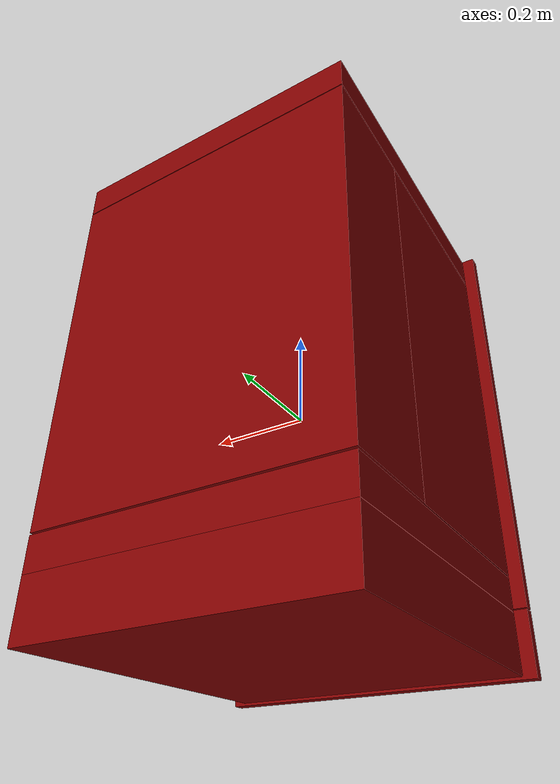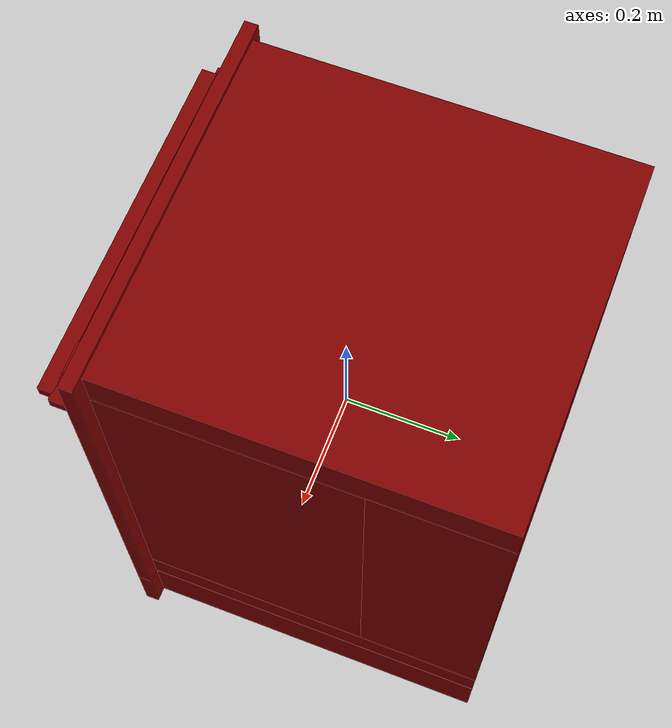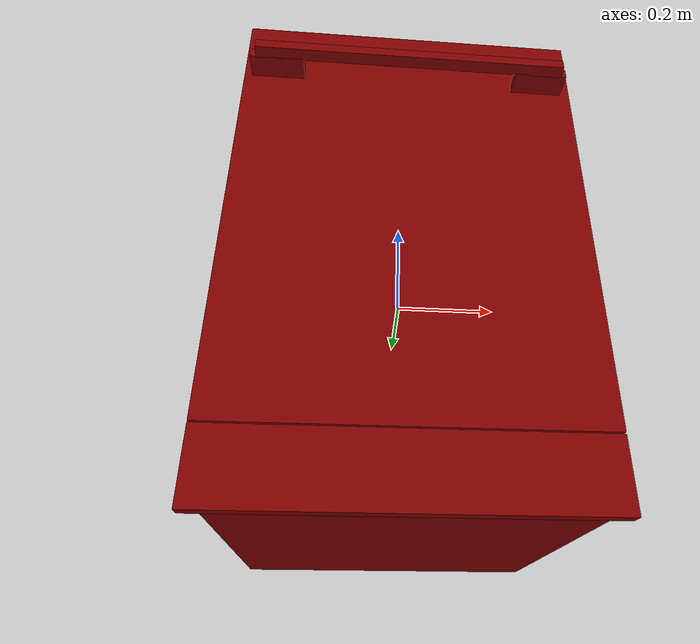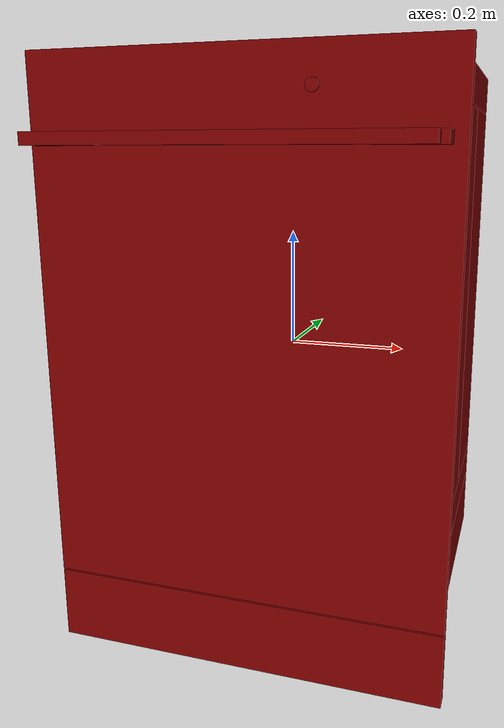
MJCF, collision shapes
<?xml version='1.0' encoding='UTF-8'?>
<mujoco model="model">
  <option timestep="0.002" gravity="0.0 0.0 -9.81"/>
  <compiler angle="radian"/>
  <asset>
    <mesh file="visuals/button_power.obj" name="button_power_vis"/>
    <mesh file="visuals/Body001.obj" name="Body001_vis"/>
    <mesh file="visuals/door.obj" name="door_vis"/>
    <mesh file="visuals/rack0.obj" name="rack0_vis"/>
    <mesh file="visuals/rack1.obj" name="rack1_vis"/>
    <texture file="visuals/T_BC001.png" name="Body001_material" type="2d"/>
    <material name="Body001_material" rgba="1 1 1 1.0" texture="Body001_material" shininess="0.1" specular="6"/>
    <texture file="visuals/T_BC001.png" name="door_material" type="2d"/>
    <material name="door_material" rgba="1 1 1 1.0" texture="door_material" shininess="0.1" specular="6"/>
    <texture file="visuals/T_BC001.png" name="button_power_material" type="2d"/>
    <material name="button_power_material" rgba="1 1 1 1.0" texture="button_power_material" shininess="0.1" specular="6"/>
    <texture file="visuals/T_BC001.png" name="rack0_material" type="2d"/>
    <material name="rack0_material" rgba="1 1 1 1.0" texture="rack0_material" shininess="0.1" specular="6"/>
    <texture file="visuals/T_BC001.png" name="rack1_material" type="2d"/>
    <material name="rack1_material" rgba="1 1 1 1.0" texture="rack1_material" shininess="0.1" specular="6"/>
  </asset>
  <default>
    <default class="visual">
      <geom conaffinity="0" contype="0" group="1" type="mesh"/>
    </default>
    <default class="collision">
      <geom group="0" rgba="0.5 0 0 0.5"/>
    </default>
    <default class="spawn">
      <geom group="0" rgba="1 1 1 0.5" contype="0" conaffinity="0"/>
      <site group="0" rgba="1 1 1 0.5"/>
    </default>
    <default class="region">
      <geom group="1" conaffinity="0" contype="0" rgba="0 1 0 0"/>
    </default>
  </default>
  <worldbody>
    <body>
      <body name="object">
        <geom mesh="Body001_vis" type="mesh" solimp="0.998 0.998 0.001" solref="0.001 1" friction="0.95 0.3 0.1" class="visual" material="Body001_material"/>
        <geom class="collision" type="box" pos="-0.00000002 -0.27696897 -0.42335901" size="0.3244858980178833 0.012244201265275478 0.061163902282714844" quat="1.0 0.0 0.0 0.0"/>
        <geom class="collision" type="box" pos="0.00038822 0.04619240 -0.42070463" size="0.2991548180580139 0.3115966320037842 0.05850958824157715" quat="1.0 0.0 0.0 0.0"/>
        <geom class="collision" type="box" pos="0.00038822 0.04619240 -0.33293474" size="0.29915493726730347 0.3115968406200409 0.03304149955511093" quat="1.0 0.0 0.0 0.0"/>
        <geom class="collision" type="box" pos="0.00038822 0.24968736 0.05879498" size="0.29915502667427063 0.10810777544975281 0.3550553023815155" quat="1.0 0.0 0.0 0.0"/>
        <geom class="collision" type="box" pos="0.00038822 0.04619240 0.44873157" size="0.29915517568588257 0.3115972578525543 0.032823991030454636" quat="1.0 0.0 0.0 0.0"/>
        <geom class="collision" type="box" pos="0.27927663 -0.06196933 0.05755318" size="0.02027086168527603 0.20343931019306183 0.35505545139312744" quat="1.0 0.0 0.0 0.0"/>
        <geom class="collision" type="box" pos="-0.27810726 -0.06196933 0.05755318" size="0.020895369350910187 0.20343941450119019 0.3550555109977722" quat="1.0 0.0 0.0 0.0"/>
        <geom class="collision" type="box" pos="0.24990419 -0.03828324 -0.14343232" size="0.011768651194870472 0.1806776374578476 0.002298763720318675" quat="1.0 0.0 0.0 0.0"/>
        <geom class="collision" type="box" pos="0.24990419 -0.03828324 0.07840847" size="0.011768658645451069 0.18067774176597595 0.002298763021826744" quat="1.0 0.0 0.0 0.0"/>
        <geom class="collision" type="box" pos="-0.24425244 -0.03828324 0.07840847" size="0.015683652833104134 0.1806778460741043 0.0022987646516412497" quat="1.0 0.0 0.0 0.0"/>
        <geom class="collision" type="box" pos="-0.24425244 -0.03828324 -0.14343232" size="0.01568366028368473 0.18067795038223267 0.002298768376931548" quat="1.0 0.0 0.0 0.0"/>
        <body name="door">
          <joint axis="1.0 0.0 0.0" pos="-2e-08 -0.28933343404995443 -0.3595657451798248" limited="true" name="door_joint" range="0.0 0.6235987755982988" type="hinge" damping="1" frictionloss="10" armature="1" stiffness="2"/>
          <geom mesh="door_vis" type="mesh" solimp="0.998 0.998 0.001" solref="0.001 1" friction="0.95 0.3 0.1" class="visual" material="door_material"/>
          <geom class="collision" type="box" pos="-0.00000002 -0.27800624 0.06247582" size="0.3244870901107788 0.011327194049954414 0.42204156517982483" quat="1.0 0.0 0.0 0.0" name="door_main"/>
          <geom class="collision" type="box" pos="-0.25857393 -0.31318618 0.35702610" size="0.05091876536607742 0.022817475721240044 0.009476338513195515" quat="1.0 0.0 0.0 0.0"/>
          <geom class="collision" type="box" pos="0.25483140 -0.31318618 0.35702610" size="0.050294287502765656 0.022817488759756088 0.009476345032453537" quat="1.0 0.0 0.0 0.0"/>
          <geom class="collision" type="box" pos="-0.00168355 -0.34621603 0.35702610" size="0.295711487531662 0.012319796718657017 0.00947635155171156" quat="1.0 0.0 0.0 0.0" name="door_handle_main"/>
          <body name="button_power">
            <joint axis="0.0 1.0 0.0" pos="0.11635070 -0.29049234 0.42535225" limited="true" name="button_power_joint" range="0.0 0.002" type="slide" damping="1" frictionloss="1" armature=".01" stiffness="4" springref="-1"/>
            <geom mesh="button_power_vis" type="mesh" solimp="0.998 0.998 0.001" solref="0.001 1" friction="0.95 0.3 0.1" class="visual" material="button_power_material"/>
            <geom class="collision" type="cylinder" pos="0.11636769 -0.29136355 0.42533377" size="0.009846530854701996 0.0015546578215435147" quat="0.7071067094802856 0.7071068286895752 0.0 0.0"/>
          </body>
        </body>
        <body name="rack0">
          <geom class="region" name="reg_rack0" type="box" pos="0.007693975000000006 -0.042310509999999996 -0.015250935" size="0.223213275 0.15854236 0.10228237500000001"/>
          <joint axis="0.0 -1.0 0.0" pos="0.00152424 -0.04322837 -0.08390982" limited="true" name="rack0_joint" range="0.0 0.2" type="slide" damping="1" frictionloss="1" armature=".01" stiffness="0.05"/>
          <geom mesh="rack0_vis" type="mesh" solimp="0.998 0.998 0.001" solref="0.001 1" friction="0.95 0.3 0.1" class="visual" material="rack0_material"/>
          <geom class="collision" type="box" pos="-0.03531636 -0.04029504 -0.09657510" size="0.0019118215423077345 0.13336151838302612 0.0261716078966856" quat="1.0 0.0 0.0 0.0"/>
          <geom class="collision" type="box" pos="0.03205111 -0.04029504 -0.09657510" size="0.0019118215423077345 0.13336151838302612 0.0261716078966856" quat="1.0 0.0 0.0 0.0"/>
          <geom class="collision" type="box" pos="0.10122308 -0.04029504 -0.09657510" size="0.0019118215423077345 0.13336151838302612 0.0261716078966856" quat="1.0 0.0 0.0 0.0"/>
          <geom class="collision" type="box" pos="0.16735027 -0.04029504 -0.09657510" size="0.0019118215423077345 0.13336151838302612 0.0261716078966856" quat="1.0 0.0 0.0 0.0"/>
          <geom class="collision" type="box" pos="0.00182250 0.12420084 -0.07674162" size="0.23673833906650543 0.003599451156333089 0.04600508511066437" quat="1.0 0.0 0.0 0.0"/>
          <geom class="collision" type="box" pos="0.00182250 -0.20953585 -0.07674162" size="0.23673833906650543 0.003599451156333089 0.04600508511066437" quat="1.0 0.0 0.0 0.0"/>
          <geom class="collision" type="box" pos="-0.24072131 -0.04413319 -0.07674162" size="0.0057272110134363174 0.16507881879806519 0.04600508511066437" quat="1.0 0.0 0.0 0.0"/>
          <geom class="collision" type="box" pos="0.24326123 -0.04413319 -0.07674162" size="0.0057272110134363174 0.16507881879806519 0.04600508511066437" quat="1.0 0.0 0.0 0.0"/>
          <geom class="collision" type="box" pos="-0.16390234 -0.04029504 -0.09657510" size="0.0019118215423077345 0.13336151838302612 0.0261716078966856" quat="1.0 0.0 0.0 0.0"/>
          <geom class="collision" type="box" pos="-0.10004316 -0.04029504 -0.09657510" size="0.0019118215423077345 0.13336151838302612 0.0261716078966856" quat="1.0 0.0 0.0 0.0"/>
          <geom class="collision" type="box" pos="0.00153467 -0.04413319 -0.12555444" size="0.24041961133480072 0.16507881879806519 0.0023818393237888813" quat="1.0 0.0 0.0 0.0"/>
        </body>
        <body name="rack1">
          <geom class="region" name="reg_rack1" type="box" pos="0.007693975000000006 -0.042310509999999996 0.251831845" size="0.223213275 0.15854236 0.150193005"/>
          <joint axis="0.0 -1.0 0.0" pos="0.00152424 -0.04322835 0.13654485" limited="true" name="rack1_joint" range="0.0 0.3" type="slide" damping="1" frictionloss="1" armature=".01" stiffness="0.05"/>
          <geom mesh="rack1_vis" type="mesh" solimp="0.998 0.998 0.001" solref="0.001 1" friction="0.95 0.3 0.1" class="visual" material="rack1_material"/>
          <geom class="collision" type="box" pos="0.00153467 -0.04413319 0.09445150" size="0.24041961133480072 0.16507881879806519 0.0023818393237888813" quat="1.0 0.0 0.0 0.0"/>
          <geom class="collision" type="box" pos="0.24326123 -0.04413319 0.14326432" size="0.0057272110134363174 0.16507881879806519 0.04600507766008377" quat="1.0 0.0 0.0 0.0"/>
          <geom class="collision" type="box" pos="-0.24072131 -0.04413319 0.14326432" size="0.0057272110134363174 0.16507881879806519 0.04600507766008377" quat="1.0 0.0 0.0 0.0"/>
          <geom class="collision" type="box" pos="0.00182250 -0.20953585 0.14326432" size="0.23673833906650543 0.003599451156333089 0.04600507766008377" quat="1.0 0.0 0.0 0.0"/>
          <geom class="collision" type="box" pos="0.00182250 0.12420084 0.14326432" size="0.23673833906650543 0.003599451156333089 0.04600507766008377" quat="1.0 0.0 0.0 0.0"/>
          <geom class="collision" type="box" pos="0.16735027 -0.04029504 0.12343085" size="0.0019118215423077345 0.13336151838302612 0.02617160975933075" quat="1.0 0.0 0.0 0.0"/>
          <geom class="collision" type="box" pos="0.10122308 -0.04029504 0.12343085" size="0.0019118215423077345 0.13336151838302612 0.02617160975933075" quat="1.0 0.0 0.0 0.0"/>
          <geom class="collision" type="box" pos="0.03205111 -0.04029504 0.12343085" size="0.0019118215423077345 0.13336151838302612 0.02617160975933075" quat="1.0 0.0 0.0 0.0"/>
          <geom class="collision" type="box" pos="-0.03531636 -0.04029504 0.12343085" size="0.0019118215423077345 0.13336151838302612 0.02617160975933075" quat="1.0 0.0 0.0 0.0"/>
          <geom class="collision" type="box" pos="-0.10004316 -0.04029504 0.12343085" size="0.0019118215423077345 0.13336151838302612 0.02617160975933075" quat="1.0 0.0 0.0 0.0"/>
          <geom class="collision" type="box" pos="-0.16390234 -0.04029504 0.12343085" size="0.0019118215423077345 0.13336151838302612 0.02617160975933075" quat="1.0 0.0 0.0 0.0"/>
        </body>
        <geom class="region" name="reg_int" type="box" pos="0.0012928900000000049 -0.058422769999999985 0.05706724499999999" size="0.23349109 0.20139873 0.344957605"/>
        <geom class="region" name="reg_main" type="box" pos="-2.500000001459668e-08 0.034231695000000006 -1.8999999998325912e-07" size="0.325490785 0.324565365 0.48552377"/>
      </body>
    </body>
  </worldbody>
  <actuator>
    <motor name="door_joint_actuator" joint="door_joint" gear="50"/>
    <motor name="rack0_joint_actuator" joint="rack0_joint" gear="50"/>
    <motor name="rack1_joint_actuator" joint="rack1_joint" gear="50"/>
    <motor name="button_power_joint_actuator" joint="button_power_joint" gear="0.5"/>
  </actuator>
</mujoco>
